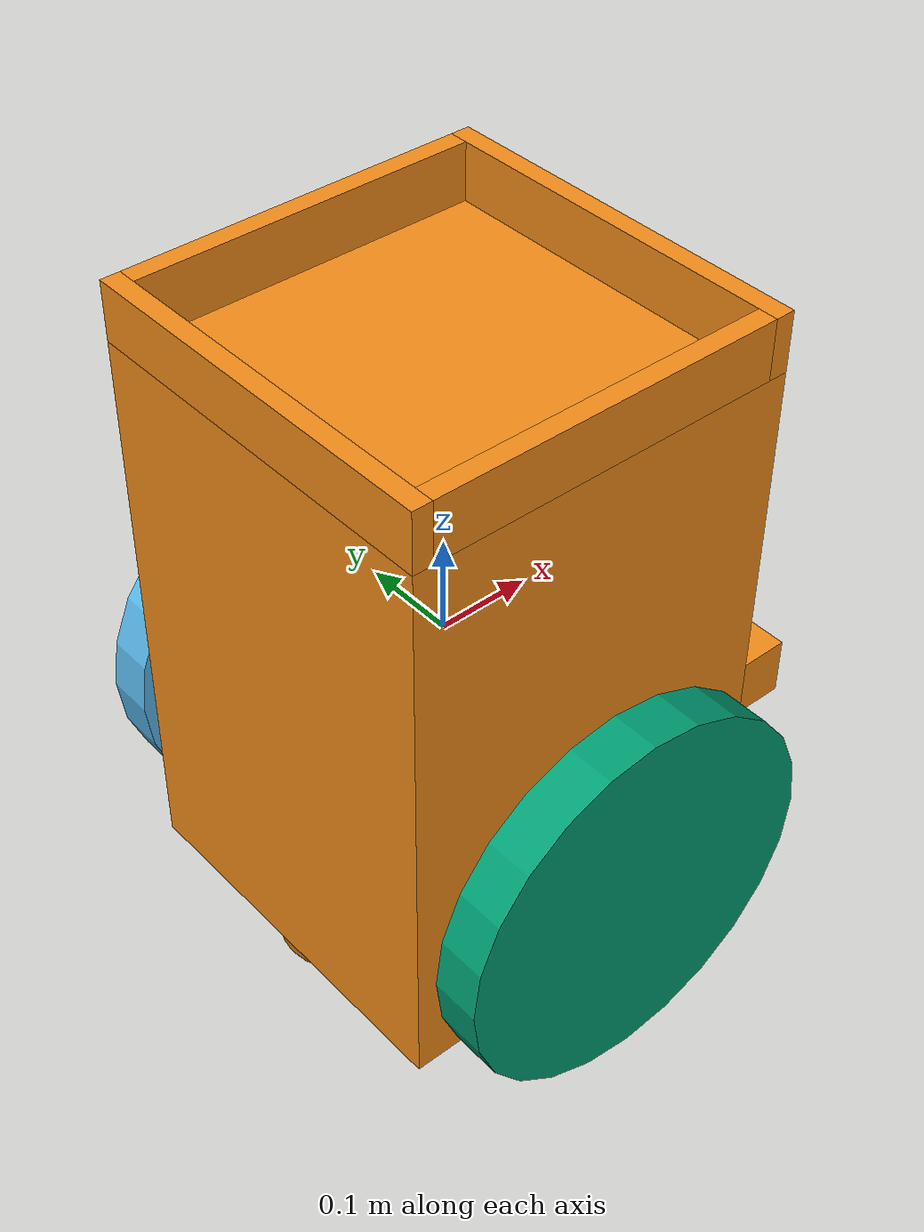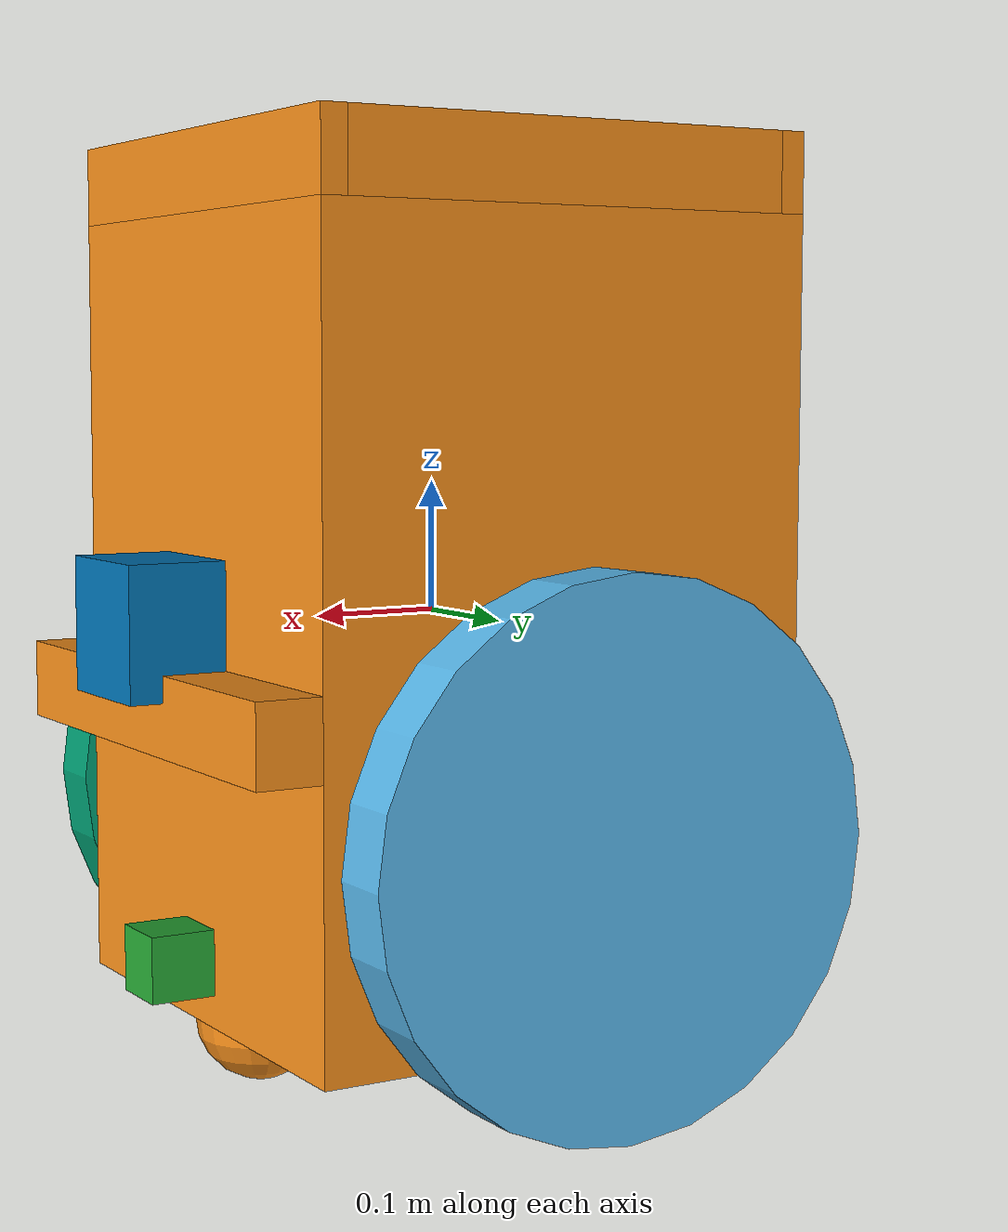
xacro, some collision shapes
<?xml version='1.0'?>

<robot name="myrobot" xmlns:xacro="http://www.ros.org/wiki/xacro">

  <xacro:property name="cameraSize" value="0.05"/>
  <xacro:property name="cameraMass" value="0.1"/>

  <xacro:include filename="$(find diff_drive_bot)/urdf/mybot2.gazebo" />
  <xacro:include filename="$(find diff_drive_bot)/urdf/materials.xacro" />
  <xacro:include filename="$(find diff_drive_bot)/urdf/macros.xacro" />

    <link name='chassis'>
    <pose xyz="0 0 0.6" rpy="0 0 0" />

    <inertial>
      <mass value="20.0"/>
      <origin xyz="0.0 0 0.6" rpy=" 0 0 0"/>
      <inertia
          ixx="0.1" ixy="0" ixz="0"
          iyy="0.1" iyz="0"
          izz="0.1"
      />
    </inertial>

    <collision name='collision'>
      <geometry>
        <box size=".4 .4 .6"/>
      </geometry>
    </collision>

    <visual name='chassis_visual'>
      <origin xyz="0 0 0" rpy=" 0 0 0"/>
      <geometry>
        <box size=".4 .4 .6"/>
      </geometry>
      <material name="orange"/>
    </visual>

    <collision name='caster_collision'>
      <origin xyz="-0.15 0 -0.3" rpy=" 0 0 0"/>
      <geometry>
        <sphere radius="0.05"/>
      </geometry>
      <surface>
        <friction>
          <ode>
            <mu>0</mu>
            <mu2>0</mu2>
            <slip1>1.0</slip1>
            <slip2>1.0</slip2>
          </ode>
        </friction>
      </surface>
    </collision>

    <visual name='caster_visual'>
      <origin xyz="-0.15 0 -0.3" rpy=" 0 0 0"/>
      <geometry>
        <sphere radius="0.05"/>
      </geometry>
    </visual>

    <collision name='caster_front_collision'>
      <origin xyz="0.15 0 -0.3" rpy=" 0 0 0"/>
      <geometry>
        <sphere radius="0.05"/>
      </geometry>
      <surface>
        <friction>
          <ode>
            <mu>0</mu>
            <mu2>0</mu2>
            <slip1>1.0</slip1>
            <slip2>1.0</slip2>
          </ode>
        </friction>
      </surface>
    </collision>

    <visual name='caster_front_visual'>
      <origin xyz="0.15 0 -0.3" rpy=" 0 0 0"/>
      <geometry>
        <sphere radius="0.05"/>
      </geometry>
    </visual>

    <collision name='tuck_front_collision'>
      <geometry>
        <box size=".02 .4 .06"/>
      </geometry>
    </collision>

    <visual name='tuck_front_visual'>
      <origin xyz="0.19 0 0.33" rpy=" 0 0 0"/>
      <geometry>
        <box size=".02 .4 .06"/>
      </geometry>
      <material name="orange"/>
    </visual>

    <collision name='tuck_back_collision'>
      <geometry>
        <box size=".02 .4 .06"/>
      </geometry>
    </collision>

    <visual name='tuck_back_visual'>
      <origin xyz="-0.19 0 0.33" rpy=" 0 0 0"/>
      <geometry>
        <box size=".02 .4 .06"/>
      </geometry>
      <material name="orange"/>
    </visual>

    <collision name='tuck_left_collision'>
      <geometry>
        <box size=".36 .02 .06"/>
      </geometry>
    </collision>

    <visual name='tuck_left_visual'>
      <origin xyz="0 0.19 0.33" rpy=" 0 0 0"/>
      <geometry>
        <box size=".36 .02 .06"/>
      </geometry>
      <material name="orange"/>
    </visual>

    <collision name='tuck_right_collision'>
      <geometry>
        <box size=".36 .02 .06"/>
      </geometry>
    </collision>

    <visual name='tuck_right_visual'>
      <origin xyz="0 -0.19 0.33" rpy=" 0 0 0"/>
      <geometry>
        <box size=".36 .02 .06"/>
      </geometry>
      <material name="orange"/>
    </visual>

    <collision name='tuck_laser'>
      <geometry>
        <box size=".05 .4 .06"/>
      </geometry>
    </collision>

    <visual name='tuck_laser'>
      <origin xyz="0.225 0 -0.06" rpy=" 0 0 0"/>
      <geometry>
        <box size=".05 .4 .06"/>
      </geometry>
      <material name="orange"/>
    </visual>

  </link>

  <link name="left_wheel">
    <!--origin xyz="0.1 0.13 0.1" rpy="0 1.5707 1.5707"/-->
    <collision name="collision">
      <origin xyz="0 0 0" rpy="0 1.5707 1.5707"/>
      <geometry>
        <cylinder radius="0.2" length="0.05"/>
      </geometry>
    </collision>
    <visual name="left_wheel_visual">
      <origin xyz="0 0 0" rpy="0 1.5707 1.5707"/>
      <geometry>
        <cylinder radius="0.2" length="0.05"/>
      </geometry>
    </visual>
    <inertial>
      <origin xyz="0 0 0" rpy="0 1.5707 1.5707"/>
      <mass value="5"/>
      <inertia
        ixx=".1" ixy="0.0" ixz="0.0"
        iyy=".1" iyz="0.0"
        izz=".1"/>
    </inertial>
  </link>

  <link name="right_wheel">
    <!--origin xyz="0.1 -0.13 0.1" rpy="0 1.5707 1.5707"/-->
    <collision name="collision">
      <origin xyz="0 0 0" rpy="0 1.5707 1.5707"/>
      <geometry>
        <cylinder radius="0.2" length="0.05"/>
      </geometry>
    </collision>
    <visual name="right_wheel_visual">
      <origin xyz="0 0 0" rpy="0 1.5707 1.5707"/>
      <geometry>
        <cylinder radius="0.2" length="0.05"/>
      </geometry>
    </visual>
    <inertial>
      <origin xyz="0 0 0" rpy="0 1.5707 1.5707"/>
      <mass value="5"/>
      <inertia
        ixx=".1" ixy="0.0" ixz="0.0"
        iyy=".1" iyz="0.0"
        izz=".1"/>
    </inertial>
  </link>

  <joint type="continuous" name="left_wheel_hinge">
    <origin xyz="0 0.25 -0.15" rpy="0 0 0"/>
    <!--origin xyz="0.1 0.13 0" rpy="0 1.5707 1.5707"/-->
    <child link="left_wheel"/>
    <parent link="chassis"/>
    <axis xyz="0 1 0" rpy="0 0 0"/>
    <limit effort="10000" velocity="1000"/>
    <joint_properties damping="1.0" friction="1.0"/>
  </joint>

  <joint type="continuous" name="right_wheel_hinge">
    <origin xyz="0 -0.25 -0.15" rpy="0 0 0"/>
    <!--origin xyz="0.1 -0.13 0" rpy="0 1.5707 1.5707"/-->
    <child link="right_wheel"/>
    <parent link="chassis"/>
    <axis xyz="0 1 0" rpy="0 0 0"/>
    <limit effort="10000" velocity="1000"/>
    <joint_properties damping="1.0" friction="1.0"/>
  </joint>

<link name="camera">
    <collision>
      <origin xyz="0 0 0" rpy="0 0 0"/>
      <geometry>
        <box size="${cameraSize} ${cameraSize} ${cameraSize}"/>
      </geometry>
    </collision>

    <visual>
      <origin xyz="0 0 0" rpy="0 0 0"/>
      <geometry>
        <box size="${cameraSize} ${cameraSize} ${cameraSize}"/>
      </geometry>
      <material name="green"/>
    </visual>

    <inertial>
      <mass value="${cameraMass}" />
      <origin xyz="0 0 0" rpy="0 0 0"/>
      <box_inertia m="${cameraMass}" x="${cameraSize}" y="${cameraSize}" z="${cameraSize}" />
      <inertia ixx="1e-6" ixy="0" ixz="0" iyy="1e-6" iyz="0" izz="1e-6" />
    </inertial>
  </link>

  <joint name="camera_joint" type="fixed">
    <axis xyz="0 1 0" />
    <origin xyz=".225 0 -0.25" rpy="0 0 0"/>
    <parent link="chassis"/>
    <child link="camera"/>
  </joint>

    <joint name="hokuyo_joint" type="fixed">
    <axis xyz="0 1 0" />
    <origin xyz=".225 0 0" rpy="0 0 0"/>
    <parent link="chassis"/>
    <child link="hokuyo"/>
  </joint>

  <!-- Hokuyo Laser -->
  <link name="hokuyo">
    <collision>
      <origin xyz="0 0 0" rpy="0 0 0"/>
      <geometry>
    <box size="0.1 0.1 0.1"/>
      </geometry>
    </collision>

    <visual>
      <origin xyz="0 0 0" rpy="0 0 0"/>
      <geometry>
        <mesh filename="package://diff_drive_bot/meshes/hokuyo.dae"/>
      </geometry>
    </visual>

    <inertial>
      <mass value="1e-5" />
      <origin xyz="0 0 0" rpy="0 0 0"/>
      <inertia ixx="1e-6" ixy="0" ixz="0" iyy="1e-6" iyz="0" izz="1e-6" />
    </inertial>
  </link>

</robot>
